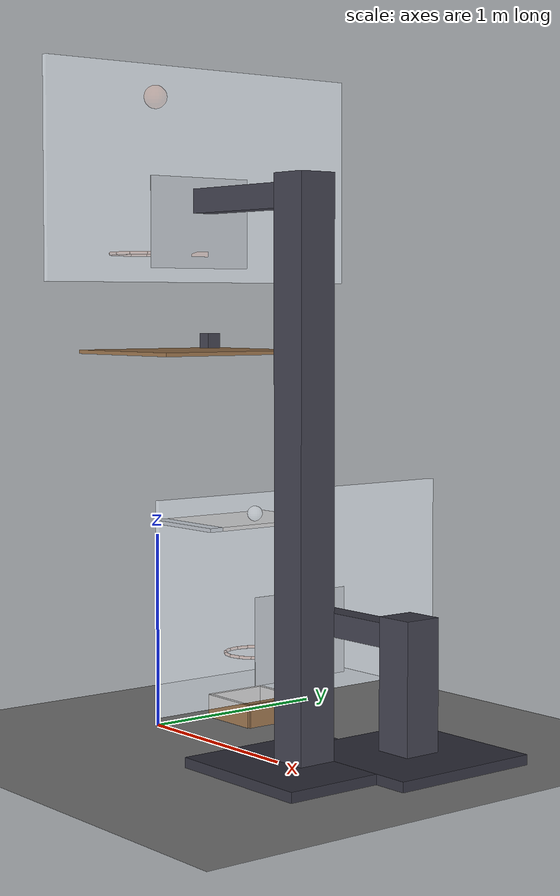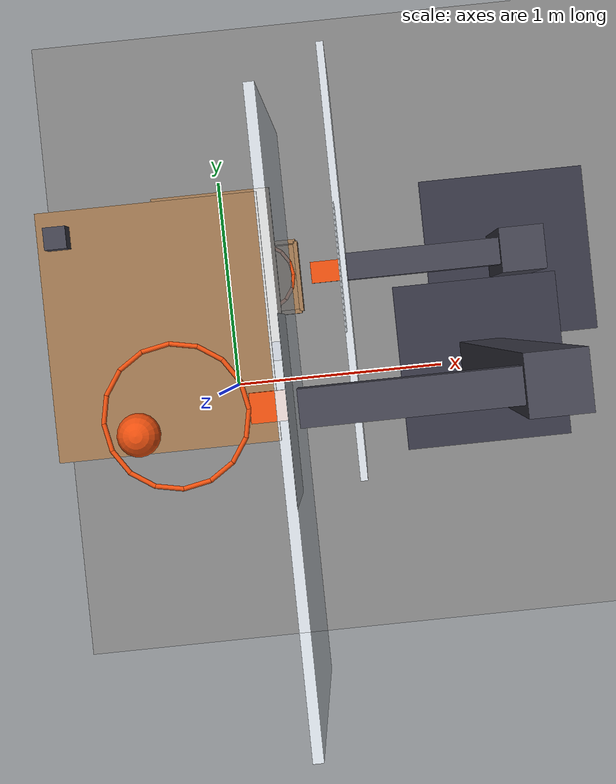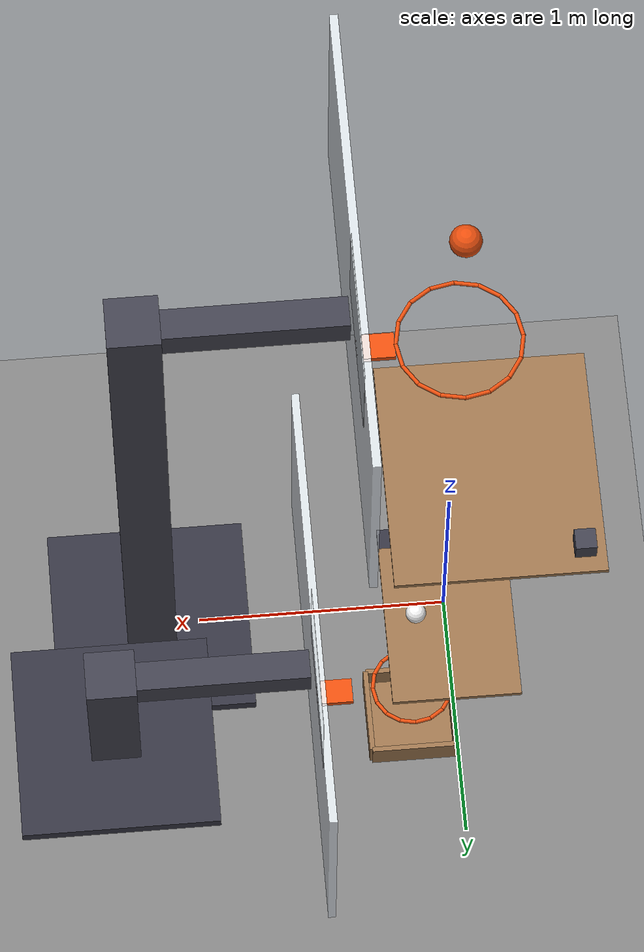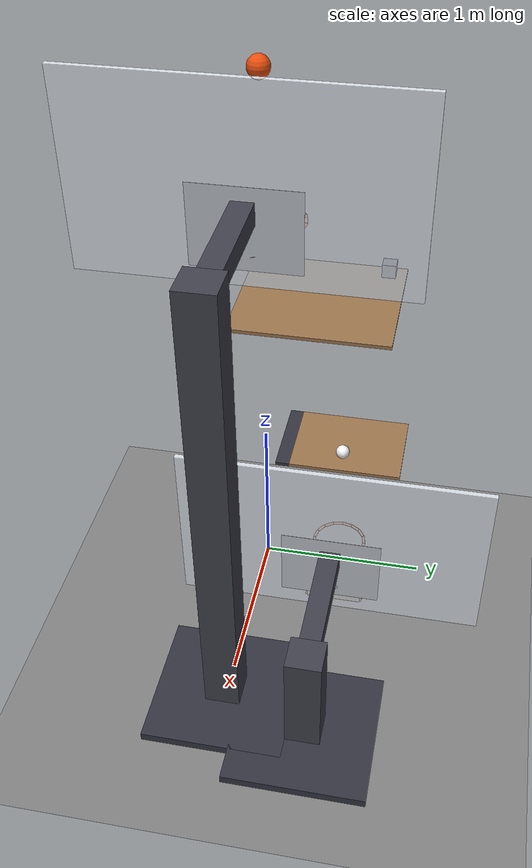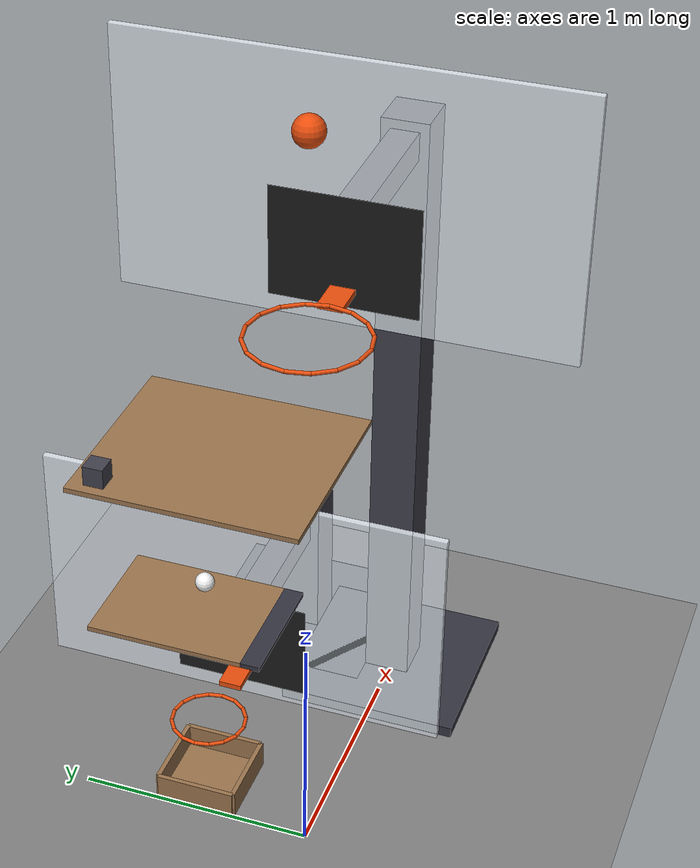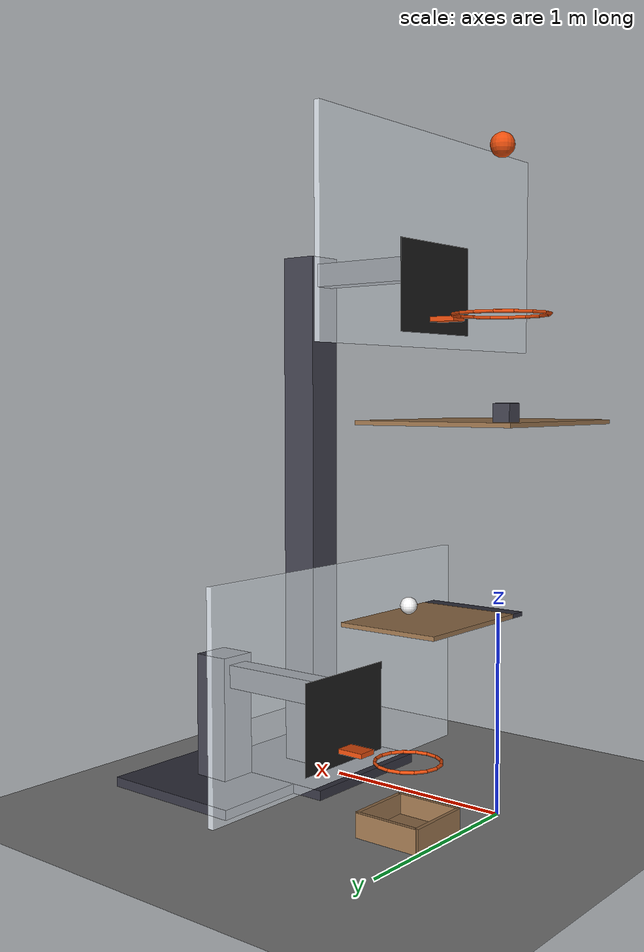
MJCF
<mujoco model="two_trapdoor_relay">
  <compiler angle="radian"/>
  <option timestep="0.002"/>
  <worldbody>
    <geom name="floor" type="plane" size="6 6 0.1" friction="0.8 0.005 0.002"/>
    <body name="hoop1">
      <geom name="hoop1_rim_00" type="capsule" size="0.008" fromto="0.2366 0 2.45 0.21859 0.0905429 2.45" rgba="0.9 0.3 0.05 1"/>
      <geom name="hoop1_rim_01" type="capsule" size="0.008" fromto="0.21859 0.0905429 2.45 0.167301 0.167301 2.45" rgba="0.9 0.3 0.05 1"/>
      <geom name="hoop1_rim_02" type="capsule" size="0.008" fromto="0.167301 0.167301 2.45 0.0905429 0.21859 2.45" rgba="0.9 0.3 0.05 1"/>
      <geom name="hoop1_rim_03" type="capsule" size="0.008" fromto="0.0905429 0.21859 2.45 1.44876e-17 0.2366 2.45" rgba="0.9 0.3 0.05 1"/>
      <geom name="hoop1_rim_04" type="capsule" size="0.008" fromto="1.44876e-17 0.2366 2.45 -0.0905429 0.21859 2.45" rgba="0.9 0.3 0.05 1"/>
      <geom name="hoop1_rim_05" type="capsule" size="0.008" fromto="-0.0905429 0.21859 2.45 -0.167301 0.167301 2.45" rgba="0.9 0.3 0.05 1"/>
      <geom name="hoop1_rim_06" type="capsule" size="0.008" fromto="-0.167301 0.167301 2.45 -0.21859 0.0905429 2.45" rgba="0.9 0.3 0.05 1"/>
      <geom name="hoop1_rim_07" type="capsule" size="0.008" fromto="-0.21859 0.0905429 2.45 -0.2366 2.89751e-17 2.45" rgba="0.9 0.3 0.05 1"/>
      <geom name="hoop1_rim_08" type="capsule" size="0.008" fromto="-0.2366 2.89751e-17 2.45 -0.21859 -0.0905429 2.45" rgba="0.9 0.3 0.05 1"/>
      <geom name="hoop1_rim_09" type="capsule" size="0.008" fromto="-0.21859 -0.0905429 2.45 -0.167301 -0.167301 2.45" rgba="0.9 0.3 0.05 1"/>
      <geom name="hoop1_rim_10" type="capsule" size="0.008" fromto="-0.167301 -0.167301 2.45 -0.0905429 -0.21859 2.45" rgba="0.9 0.3 0.05 1"/>
      <geom name="hoop1_rim_11" type="capsule" size="0.008" fromto="-0.0905429 -0.21859 2.45 -4.34627e-17 -0.2366 2.45" rgba="0.9 0.3 0.05 1"/>
      <geom name="hoop1_rim_12" type="capsule" size="0.008" fromto="-4.34627e-17 -0.2366 2.45 0.0905429 -0.21859 2.45" rgba="0.9 0.3 0.05 1"/>
      <geom name="hoop1_rim_13" type="capsule" size="0.008" fromto="0.0905429 -0.21859 2.45 0.167301 -0.167301 2.45" rgba="0.9 0.3 0.05 1"/>
      <geom name="hoop1_rim_14" type="capsule" size="0.008" fromto="0.167301 -0.167301 2.45 0.21859 -0.0905429 2.45" rgba="0.9 0.3 0.05 1"/>
      <geom name="hoop1_rim_15" type="capsule" size="0.008" fromto="0.21859 -0.0905429 2.45 0.2366 -5.79503e-17 2.45" rgba="0.9 0.3 0.05 1"/>
      <geom name="hoop1_bracket" type="box" pos="0.3105 0 2.44" size="0.0705 0.05 0.012" rgba="0.9 0.3 0.05 1"/>
      <geom name="hoop1_backboard" type="box" pos="0.396 0 2.825" size="0.015 0.9 0.525" rgba="0.92 0.95 0.98 0.85"/>
      <geom name="hoop1_square" type="box" pos="0.3805 0 2.595" size="0.0005 0.295 0.225" contype="0" conaffinity="0" rgba="0.1 0.1 0.1 1"/>
      <geom name="hoop1_pole_base" type="box" pos="1.2 0 0.025" size="0.4 0.4 0.025" rgba="0.2 0.2 0.25 1"/>
      <geom name="hoop1_pole" type="box" pos="1.2 0 1.4" size="0.1 0.1 1.4" rgba="0.25 0.25 0.3 1"/>
      <geom name="hoop1_arm" type="box" pos="0.7555 0 2.7" size="0.3445 0.06 0.06" rgba="0.25 0.25 0.3 1"/>
    </body>
    <body name="ball1" pos="0 0 3.25">
      <freejoint/>
      <geom name="ball1" type="sphere" pos="0 0 0" size="0.06" mass="1" condim="6" friction="0.8 0.01 0.004" solref="0.01 1" rgba="0.9 0.3 0.05 1"/>
    </body>
    <body name="flap1" pos="0.3 0.3 1.94">
      <joint name="flap1_hinge" type="hinge" pos="0 0 0" axis="0 1 0" limited="true" range="-0.785398 0" stiffness="0.4" springref="5.75959" damping="0.02"/>
      <geom name="flap1" type="box" pos="-0.4 0 0" size="0.4 0.45 0.01" mass="0.15" friction="0.5 0.005 0.0001" rgba="0.6 0.45 0.3 1"/>
    </body>
    <body name="block" pos="-0.42 0.65 1.99">
      <freejoint/>
      <geom name="block" type="box" pos="0 0 0" size="0.04 0.04 0.04" mass="0.2" friction="0.6 0.005 0.0001" solref="0.01 1" rgba="0.25 0.25 0.3 1"/>
    </body>
    <body name="hoop2">
      <geom name="hoop2_rim_00" type="capsule" size="0.008" fromto="0.338 0.5 0.35 0.325973 0.560464 0.35" rgba="0.9 0.3 0.05 1"/>
      <geom name="hoop2_rim_01" type="capsule" size="0.008" fromto="0.325973 0.560464 0.35 0.291723 0.611723 0.35" rgba="0.9 0.3 0.05 1"/>
      <geom name="hoop2_rim_02" type="capsule" size="0.008" fromto="0.291723 0.611723 0.35 0.240464 0.645973 0.35" rgba="0.9 0.3 0.05 1"/>
      <geom name="hoop2_rim_03" type="capsule" size="0.008" fromto="0.240464 0.645973 0.35 0.18 0.658 0.35" rgba="0.9 0.3 0.05 1"/>
      <geom name="hoop2_rim_04" type="capsule" size="0.008" fromto="0.18 0.658 0.35 0.119536 0.645973 0.35" rgba="0.9 0.3 0.05 1"/>
      <geom name="hoop2_rim_05" type="capsule" size="0.008" fromto="0.119536 0.645973 0.35 0.0682771 0.611723 0.35" rgba="0.9 0.3 0.05 1"/>
      <geom name="hoop2_rim_06" type="capsule" size="0.008" fromto="0.0682771 0.611723 0.35 0.034027 0.560464 0.35" rgba="0.9 0.3 0.05 1"/>
      <geom name="hoop2_rim_07" type="capsule" size="0.008" fromto="0.034027 0.560464 0.35 0.022 0.5 0.35" rgba="0.9 0.3 0.05 1"/>
      <geom name="hoop2_rim_08" type="capsule" size="0.008" fromto="0.022 0.5 0.35 0.034027 0.439536 0.35" rgba="0.9 0.3 0.05 1"/>
      <geom name="hoop2_rim_09" type="capsule" size="0.008" fromto="0.034027 0.439536 0.35 0.0682771 0.388277 0.35" rgba="0.9 0.3 0.05 1"/>
      <geom name="hoop2_rim_10" type="capsule" size="0.008" fromto="0.0682771 0.388277 0.35 0.119536 0.354027 0.35" rgba="0.9 0.3 0.05 1"/>
      <geom name="hoop2_rim_11" type="capsule" size="0.008" fromto="0.119536 0.354027 0.35 0.18 0.342 0.35" rgba="0.9 0.3 0.05 1"/>
      <geom name="hoop2_rim_12" type="capsule" size="0.008" fromto="0.18 0.342 0.35 0.240464 0.354027 0.35" rgba="0.9 0.3 0.05 1"/>
      <geom name="hoop2_rim_13" type="capsule" size="0.008" fromto="0.240464 0.354027 0.35 0.291723 0.388277 0.35" rgba="0.9 0.3 0.05 1"/>
      <geom name="hoop2_rim_14" type="capsule" size="0.008" fromto="0.291723 0.388277 0.35 0.325973 0.439536 0.35" rgba="0.9 0.3 0.05 1"/>
      <geom name="hoop2_rim_15" type="capsule" size="0.008" fromto="0.325973 0.439536 0.35 0.338 0.5 0.35" rgba="0.9 0.3 0.05 1"/>
      <geom name="hoop2_bracket" type="box" pos="0.4905 0.5 0.34" size="0.0705 0.05 0.012" rgba="0.9 0.3 0.05 1"/>
      <geom name="hoop2_backboard" type="box" pos="0.576 0.5 0.725" size="0.015 0.9 0.525" rgba="0.92 0.95 0.98 0.85"/>
      <geom name="hoop2_square" type="box" pos="0.5605 0.5 0.495" size="0.0005 0.295 0.225" contype="0" conaffinity="0" rgba="0.1 0.1 0.1 1"/>
      <geom name="hoop2_pole_base" type="box" pos="1.38 0.5 0.025" size="0.4 0.4 0.025" rgba="0.2 0.2 0.25 1"/>
      <geom name="hoop2_pole" type="box" pos="1.38 0.5 0.35" size="0.1 0.1 0.35" rgba="0.25 0.25 0.3 1"/>
      <geom name="hoop2_arm" type="box" pos="0.9355 0.5 0.6" size="0.3445 0.06 0.06" rgba="0.25 0.25 0.3 1"/>
    </body>
    <body name="flap2" pos="0.05 0.2 1.04">
      <joint name="flap2_hinge" type="hinge" pos="0 0 0" axis="1 0 0" limited="true" range="-1.5708 0" damping="0.005"/>
      <geom name="flap2" type="box" pos="0 0.325 0" size="0.25 0.325 0.01" mass="0.08" friction="0.6 0.005 0.0001" solref="0.01 1" rgba="0.6 0.45 0.3 1"/>
      <geom name="flap2 weight" type="box" pos="0 -0.04 0" size="0.25 0.04 0.01" mass="1.12" rgba="0.2 0.2 0.25 1"/>
    </body>
    <body name="ball2" pos="0.18 0.5 1.09">
      <freejoint/>
      <geom name="ball2" type="sphere" pos="0 0 0" size="0.04" mass="0.05" condim="6" friction="0.8 0.01 0.01" solref="0.01 1" rgba="0.95 0.95 0.95 1"/>
    </body>
    <body name="cup">
      <geom name="cup_base" type="box" pos="0.18 0.5 0.01" size="0.17 0.17 0.01" friction="0.8 0.01 0.01" solref="0.01 1" rgba="0.6 0.45 0.3 1"/>
      <geom name="cup_near_wall" type="box" pos="0.01 0.5 0.06" size="0.01 0.17 0.06" friction="0.8 0.01 0.01" solref="0.01 1" rgba="0.6 0.45 0.3 1"/>
      <geom name="cup_far_wall" type="box" pos="0.35 0.5 0.06" size="0.01 0.17 0.06" friction="0.8 0.01 0.01" solref="0.01 1" rgba="0.6 0.45 0.3 1"/>
      <geom name="cup_left_wall" type="box" pos="0.18 0.67 0.06" size="0.17 0.01 0.06" friction="0.8 0.01 0.01" solref="0.01 1" rgba="0.6 0.45 0.3 1"/>
      <geom name="cup_right_wall" type="box" pos="0.18 0.33 0.06" size="0.17 0.01 0.06" friction="0.8 0.01 0.01" solref="0.01 1" rgba="0.6 0.45 0.3 1"/>
    </body>
  </worldbody>
  <keyframe>
    <key name="start" qpos="0 0 3.25 1 0 0 0 0 -0.42 0.65 1.99 1 0 0 0 0 0.18 0.5 1.09 1 0 0 0" qvel="0 0 0 0 0 0 0 0 0 0 0 0 0 0 0 0 0 0 0 0"/>
  </keyframe>
</mujoco>
